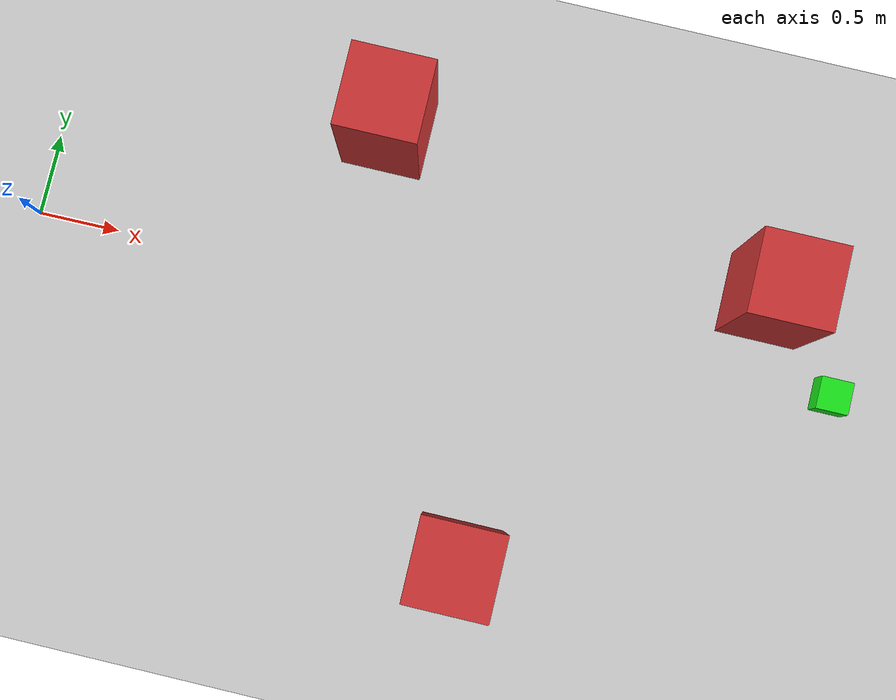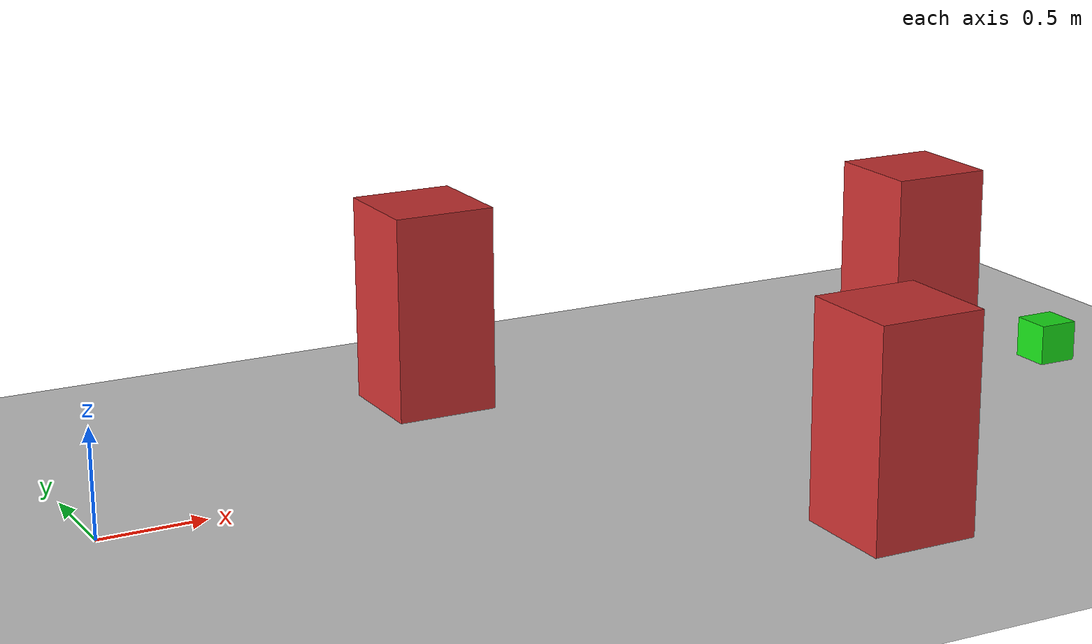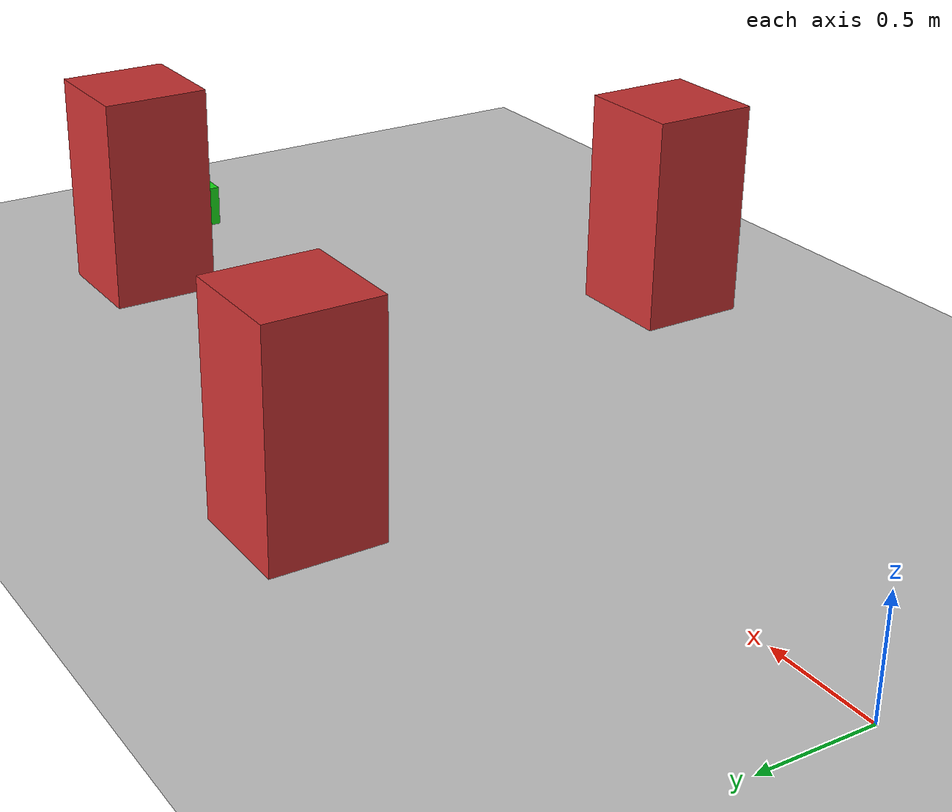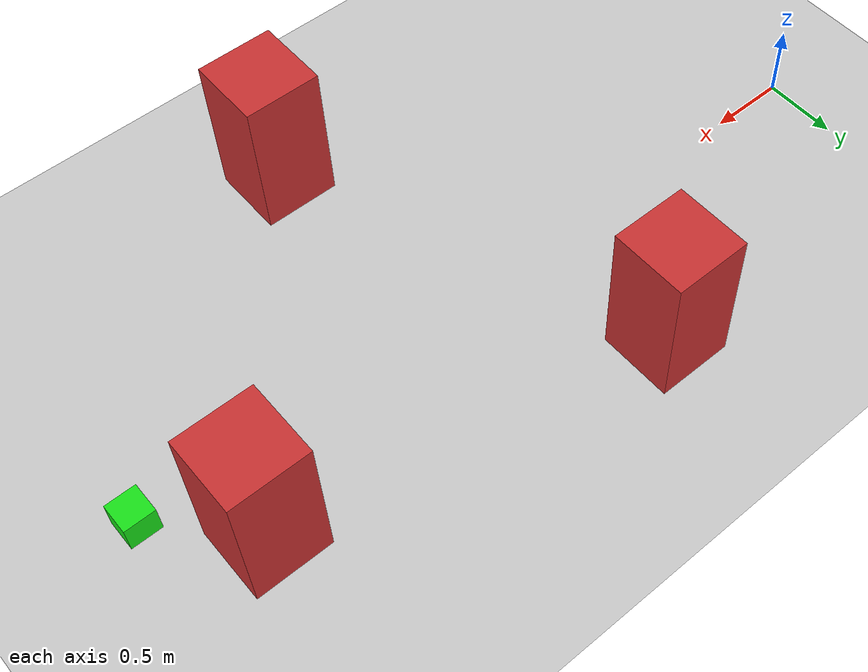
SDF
<?xml version="1.0" ?>
<sdf version="1.8">
  <world name="tb3_pick_world">
    <physics name="1ms" type="ignored">
      <max_step_size>0.001</max_step_size>
      <real_time_factor>1.0</real_time_factor>
    </physics>

    <plugin filename="gz-sim-physics-system" name="gz::sim::systems::Physics"/>
    <plugin filename="gz-sim-user-commands-system" name="gz::sim::systems::UserCommands"/>
    <plugin filename="gz-sim-scene-broadcaster-system" name="gz::sim::systems::SceneBroadcaster"/>
    <plugin filename="gz-sim-sensors-system" name="gz::sim::systems::Sensors">
      <render_engine>ogre2</render_engine>
    </plugin>

    <light type="directional" name="sun">
      <cast_shadows>true</cast_shadows>
      <pose>0 0 10 0 0 0</pose>
      <diffuse>0.8 0.8 0.8 1</diffuse>
      <specular>0.2 0.2 0.2 1</specular>
      <direction>-0.5 0.1 -0.9</direction>
    </light>

    <model name="ground_plane">
      <static>true</static>
      <link name="link">
        <collision name="collision">
          <geometry>
            <plane>
              <normal>0 0 1</normal>
              <size>50 50</size>
            </plane>
          </geometry>
        </collision>
        <visual name="visual">
          <geometry>
            <plane>
              <normal>0 0 1</normal>
              <size>50 50</size>
            </plane>
          </geometry>
          <material>
            <ambient>0.8 0.8 0.8 1</ambient>
            <diffuse>0.8 0.8 0.8 1</diffuse>
          </material>
        </visual>
      </link>
    </model>

    <!-- Obstacle 1 -->
    <model name="obstacle_1">
      <pose>2.0 1.0 0.5 0 0 0</pose>
      <static>true</static>
      <link name="link">
        <collision name="collision">
          <geometry><box><size>0.5 0.5 1.0</size></box></geometry>
        </collision>
        <visual name="visual">
          <geometry><box><size>0.5 0.5 1.0</size></box></geometry>
          <material>
            <ambient>0.8 0.2 0.2 1</ambient>
            <diffuse>0.8 0.2 0.2 1</diffuse>
          </material>
        </visual>
      </link>
    </model>

    <!-- Obstacle 2 -->
    <model name="obstacle_2">
      <pose>3.0 -1.5 0.5 0 0 0</pose>
      <static>true</static>
      <link name="link">
        <collision name="collision">
          <geometry><box><size>0.5 0.5 1.0</size></box></geometry>
        </collision>
        <visual name="visual">
          <geometry><box><size>0.5 0.5 1.0</size></box></geometry>
          <material>
            <ambient>0.8 0.2 0.2 1</ambient>
            <diffuse>0.8 0.2 0.2 1</diffuse>
          </material>
        </visual>
      </link>
    </model>

    <!-- Obstacle 3 -->
    <model name="obstacle_3">
      <pose>4.5 0.5 0.5 0 0 0</pose>
      <static>true</static>
      <link name="link">
        <collision name="collision">
          <geometry><box><size>0.5 0.5 1.0</size></box></geometry>
        </collision>
        <visual name="visual">
          <geometry><box><size>0.5 0.5 1.0</size></box></geometry>
          <material>
            <ambient>0.8 0.2 0.2 1</ambient>
            <diffuse>0.8 0.2 0.2 1</diffuse>
          </material>
        </visual>
      </link>
    </model>

    <!-- Target Box (green) - pick destination -->
    <model name="target_box">
      <pose>5.0 0.0 0.15 0 0 0</pose>
      <static>false</static>
      <link name="link">
        <inertial>
          <mass>0.5</mass>
          <inertia>
            <ixx>0.002</ixx><ixy>0</ixy><ixz>0</ixz>
            <iyy>0.002</iyy><iyz>0</iyz>
            <izz>0.002</izz>
          </inertia>
        </inertial>
        <collision name="collision">
          <geometry><box><size>0.2 0.2 0.2</size></box></geometry>
        </collision>
        <visual name="visual">
          <geometry><box><size>0.2 0.2 0.2</size></box></geometry>
          <material>
            <ambient>0.1 0.9 0.1 1</ambient>
            <diffuse>0.1 0.9 0.1 1</diffuse>
          </material>
        </visual>
      </link>
    </model>

  </world>
</sdf>
